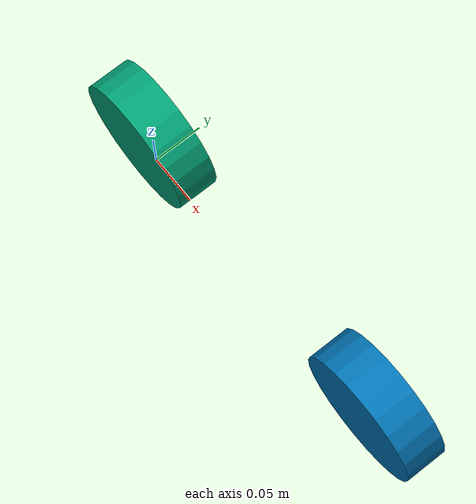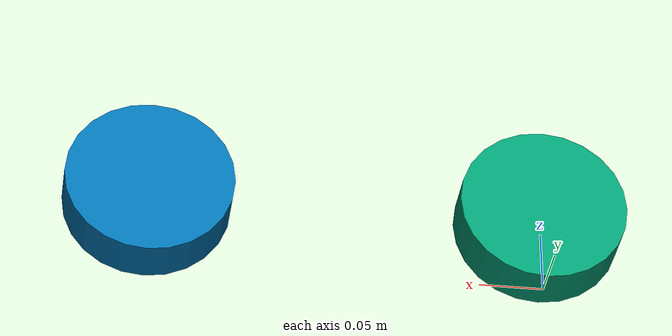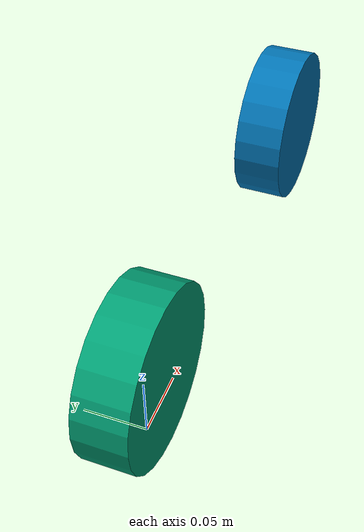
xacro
<?xml version="1.0"?>
<robot name="ackermann_robot" xmlns:xacro="http://www.ros.org/wiki/xacro">
  <xacro:arg name="use_mock_hardware" default="false"/>

  <xacro:property name="wheelbase" value="0.31115"/>
  <xacro:property name="wheel_radius" value="0.066675"/>
  <xacro:property name="max_steer_angle" value="0.6981317"/>

  <link name="base_footprint"/>

  <!-- base_link sits on the rear axle, which is where the bicycle model puts the robot origin. -->
  <link name="base_link"/>
  <joint name="base_footprint_joint" type="fixed">
    <parent link="base_footprint"/>
    <child link="base_link"/>
    <origin xyz="0 0 ${wheel_radius}" rpy="0 0 0"/>
  </joint>

  <link name="rear_wheel">
    <visual>
      <origin rpy="${pi/2} 0 0"/>
      <geometry><cylinder radius="${wheel_radius}" length="0.04"/></geometry>
    </visual>
  </link>
  <joint name="rear_wheel_joint" type="continuous">
    <parent link="base_link"/>
    <child link="rear_wheel"/>
    <origin xyz="0 0 0" rpy="0 0 0"/>
    <axis xyz="0 1 0"/>
  </joint>

  <link name="steering_link"/>
  <joint name="steering_joint" type="revolute">
    <parent link="base_link"/>
    <child link="steering_link"/>
    <origin xyz="${wheelbase} 0 0" rpy="0 0 0"/>
    <axis xyz="0 0 1"/>
    <limit lower="-${max_steer_angle}" upper="${max_steer_angle}" effort="10.0" velocity="6.0"/>
  </joint>

  <link name="front_wheel">
    <visual>
      <origin rpy="${pi/2} 0 0"/>
      <geometry><cylinder radius="${wheel_radius}" length="0.04"/></geometry>
    </visual>
  </link>
  <joint name="front_wheel_joint" type="fixed">
    <parent link="steering_link"/>
    <child link="front_wheel"/>
  </joint>

  <xacro:include filename="$(find ackermann_hardware)/urdf/ackermann.ros2_control.xacro"/>
  <xacro:ackermann_ros2_control name="AckermannBase"
                                use_mock_hardware="$(arg use_mock_hardware)"
                                max_steer_angle="${max_steer_angle}"/>
</robot>
